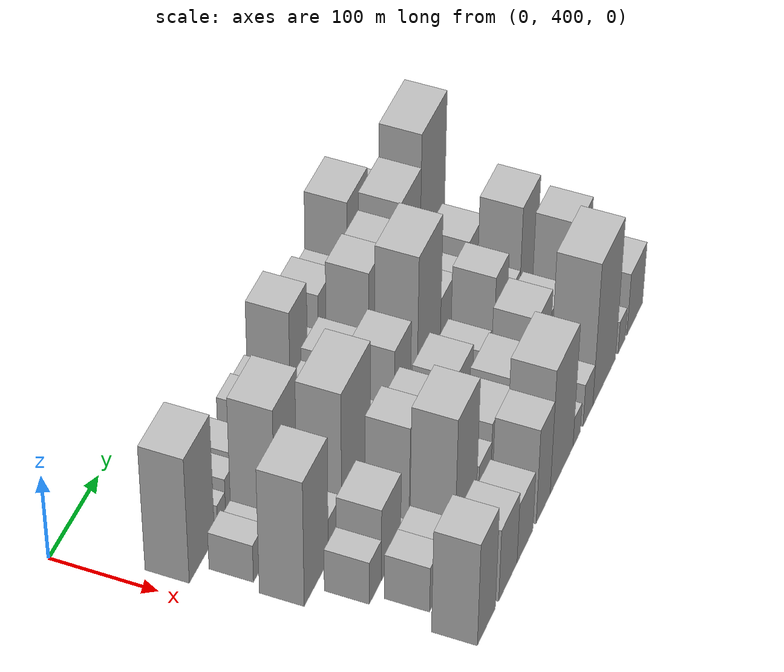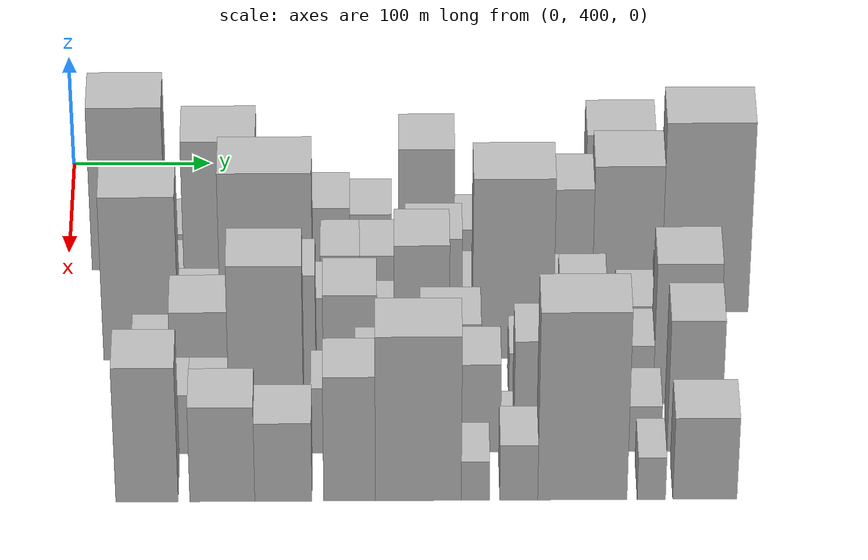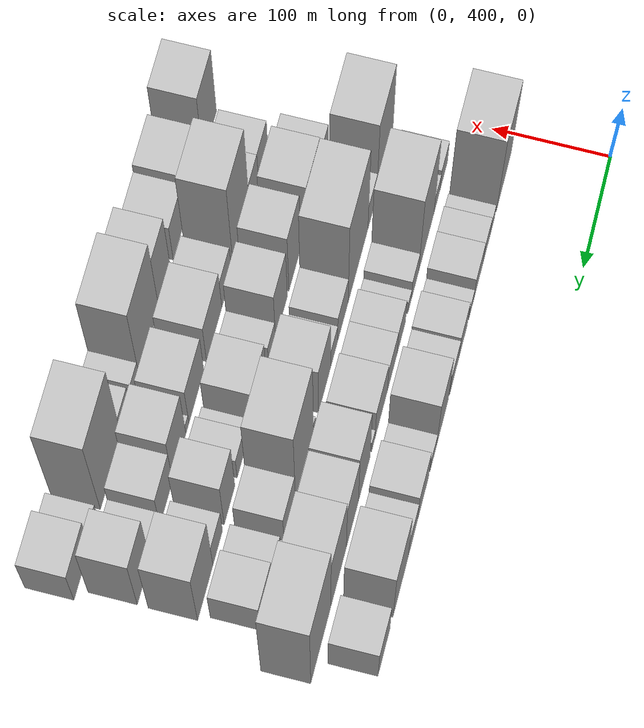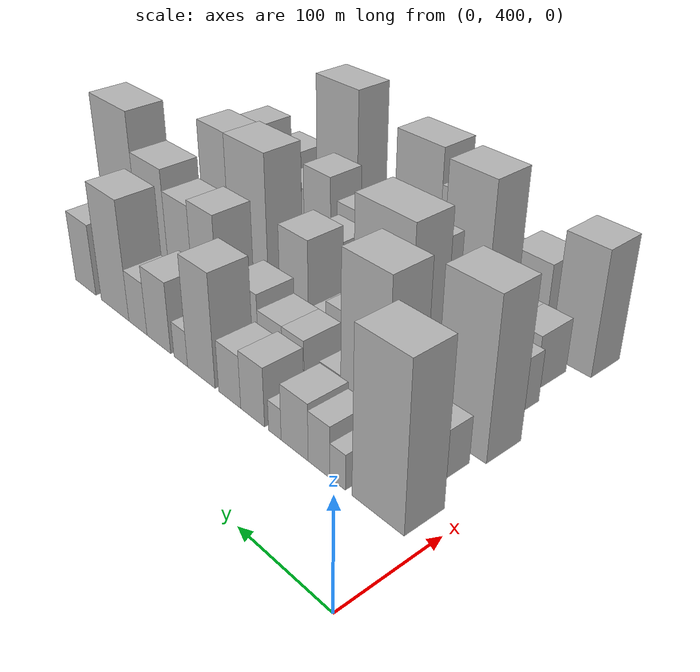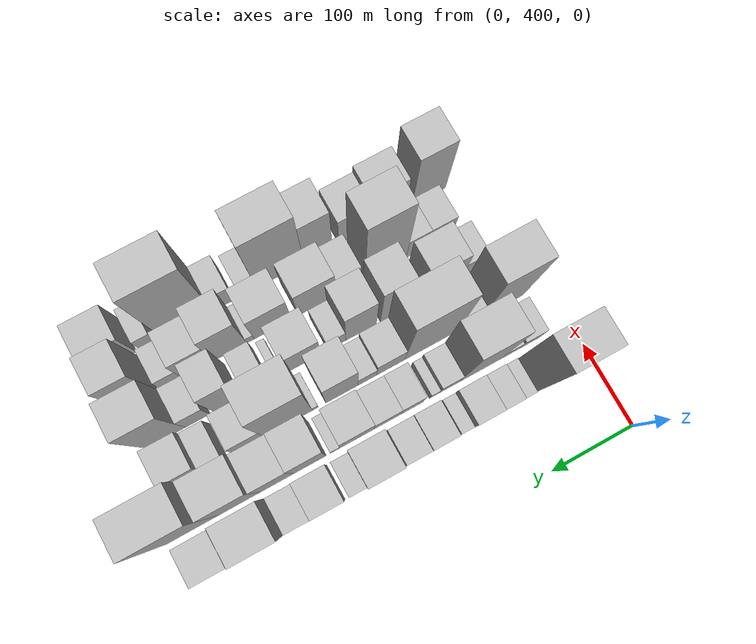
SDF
<sdf version="1.6">
 <world name="default">
  <model name="building_33">
   <static>1</static>
   <pose>100.0000 444.0145 0 0.000000 0.000000 0.000000</pose>
   <link name="link">
    <pose>0 0 75.00 0 0 0</pose>
    <collision name="collision"><geometry><box><size>40.0000 53.2121 150.0000</size></box></geometry></collision>
    <visual name="visual">
     <cast_shadows>0</cast_shadows>
     <geometry><box><size>40.0000 53.2121 150.0000</size></box></geometry>
     <material>
      <script>
       <uri>model://HANNAS_wall/materials/scripts</uri>
       <uri>model://HANNAS_wall/materials/textures</uri>
       <name>vrc/HANNAS_wall</name>
      </script>
     </material>
    </visual>
   </link>
  </model>
  <model name="building_34">
   <static>1</static>
   <pose>100.0000 486.1541 0 0.000000 0.000000 0.000000</pose>
   <link name="link">
    <pose>0 0 16.50 0 0 0</pose>
    <collision name="collision"><geometry><box><size>40.0000 17.0671 33.0000</size></box></geometry></collision>
    <visual name="visual">
     <cast_shadows>0</cast_shadows>
     <geometry><box><size>40.0000 17.0671 33.0000</size></box></geometry>
     <material>
      <script>
       <uri>model://HANNAS_wall/materials/scripts</uri>
       <uri>model://HANNAS_wall/materials/textures</uri>
       <name>vrc/HANNAS_wall</name>
      </script>
     </material>
    </visual>
   </link>
  </model>
  <model name="building_35">
   <static>1</static>
   <pose>100.0000 506.9671 0 0.000000 0.000000 0.000000</pose>
   <link name="link">
    <pose>0 0 24.00 0 0 0</pose>
    <collision name="collision"><geometry><box><size>40.0000 24.5587 48.0000</size></box></geometry></collision>
    <visual name="visual">
     <cast_shadows>0</cast_shadows>
     <geometry><box><size>40.0000 24.5587 48.0000</size></box></geometry>
     <material>
      <script>
       <uri>model://HANNAS_wall/materials/scripts</uri>
       <uri>model://HANNAS_wall/materials/textures</uri>
       <name>vrc/HANNAS_wall</name>
      </script>
     </material>
    </visual>
   </link>
  </model>
  <model name="building_36">
   <static>1</static>
   <pose>100.0000 535.3519 0 0.000000 0.000000 0.000000</pose>
   <link name="link">
    <pose>0 0 27.00 0 0 0</pose>
    <collision name="collision"><geometry><box><size>40.0000 32.2110 54.0000</size></box></geometry></collision>
    <visual name="visual">
     <cast_shadows>0</cast_shadows>
     <geometry><box><size>40.0000 32.2110 54.0000</size></box></geometry>
     <material>
      <script>
       <uri>model://HANNAS_wall/materials/scripts</uri>
       <uri>model://HANNAS_wall/materials/textures</uri>
       <name>vrc/HANNAS_wall</name>
      </script>
     </material>
    </visual>
   </link>
  </model>
  <model name="building_37">
   <static>1</static>
   <pose>100.0000 559.2632 0 0.000000 0.000000 0.000000</pose>
   <link name="link">
    <pose>0 0 15.00 0 0 0</pose>
    <collision name="collision"><geometry><box><size>40.0000 15.6117 30.0000</size></box></geometry></collision>
    <visual name="visual">
     <cast_shadows>0</cast_shadows>
     <geometry><box><size>40.0000 15.6117 30.0000</size></box></geometry>
     <material>
      <script>
       <uri>model://HANNAS_wall/materials/scripts</uri>
       <uri>model://HANNAS_wall/materials/textures</uri>
       <name>vrc/HANNAS_wall</name>
      </script>
     </material>
    </visual>
   </link>
  </model>
  <model name="building_38">
   <static>1</static>
   <pose>100.0000 587.5216 0 0.000000 0.000000 0.000000</pose>
   <link name="link">
    <pose>0 0 28.50 0 0 0</pose>
    <collision name="collision"><geometry><box><size>40.0000 30.9050 57.0000</size></box></geometry></collision>
    <visual name="visual">
     <cast_shadows>0</cast_shadows>
     <geometry><box><size>40.0000 30.9050 57.0000</size></box></geometry>
     <material>
      <script>
       <uri>model://HANNAS_wall/materials/scripts</uri>
       <uri>model://HANNAS_wall/materials/textures</uri>
       <name>vrc/HANNAS_wall</name>
      </script>
     </material>
    </visual>
   </link>
  </model>
  <model name="building_39">
   <static>1</static>
   <pose>100.0000 618.0033 0 0.000000 0.000000 0.000000</pose>
   <link name="link">
    <pose>0 0 25.50 0 0 0</pose>
    <collision name="collision"><geometry><box><size>40.0000 30.0585 51.0000</size></box></geometry></collision>
    <visual name="visual">
     <cast_shadows>0</cast_shadows>
     <geometry><box><size>40.0000 30.0585 51.0000</size></box></geometry>
     <material>
      <script>
       <uri>model://HANNAS_wall/materials/scripts</uri>
       <uri>model://HANNAS_wall/materials/textures</uri>
       <name>vrc/HANNAS_wall</name>
      </script>
     </material>
    </visual>
   </link>
  </model>
  <model name="building_40">
   <static>1</static>
   <pose>100.0000 657.9605 0 0.000000 0.000000 0.000000</pose>
   <link name="link">
    <pose>0 0 55.50 0 0 0</pose>
    <collision name="collision"><geometry><box><size>40.0000 39.8559 111.0000</size></box></geometry></collision>
    <visual name="visual">
     <cast_shadows>0</cast_shadows>
     <geometry><box><size>40.0000 39.8559 111.0000</size></box></geometry>
     <material>
      <script>
       <uri>model://HANNAS_wall/materials/scripts</uri>
       <uri>model://HANNAS_wall/materials/textures</uri>
       <name>vrc/HANNAS_wall</name>
      </script>
     </material>
    </visual>
   </link>
  </model>
  <model name="building_41">
   <static>1</static>
   <pose>100.0000 688.1823 0 0.000000 0.000000 0.000000</pose>
   <link name="link">
    <pose>0 0 18.00 0 0 0</pose>
    <collision name="collision"><geometry><box><size>40.0000 20.5877 36.0000</size></box></geometry></collision>
    <visual name="visual">
     <cast_shadows>0</cast_shadows>
     <geometry><box><size>40.0000 20.5877 36.0000</size></box></geometry>
     <material>
      <script>
       <uri>model://HANNAS_wall/materials/scripts</uri>
       <uri>model://HANNAS_wall/materials/textures</uri>
       <name>vrc/HANNAS_wall</name>
      </script>
     </material>
    </visual>
   </link>
  </model>
  <model name="building_42">
   <static>1</static>
   <pose>100.0000 722.3112 0 0.000000 0.000000 0.000000</pose>
   <link name="link">
    <pose>0 0 36.00 0 0 0</pose>
    <collision name="collision"><geometry><box><size>40.0000 37.6702 72.0000</size></box></geometry></collision>
    <visual name="visual">
     <cast_shadows>0</cast_shadows>
     <geometry><box><size>40.0000 37.6702 72.0000</size></box></geometry>
     <material>
      <script>
       <uri>model://HANNAS_wall/materials/scripts</uri>
       <uri>model://HANNAS_wall/materials/textures</uri>
       <name>vrc/HANNAS_wall</name>
      </script>
     </material>
    </visual>
   </link>
  </model>
  <model name="building_43">
   <static>1</static>
   <pose>100.0000 756.2850 0 0.000000 0.000000 0.000000</pose>
   <link name="link">
    <pose>0 0 27.00 0 0 0</pose>
    <collision name="collision"><geometry><box><size>40.0000 30.2773 54.0000</size></box></geometry></collision>
    <visual name="visual">
     <cast_shadows>0</cast_shadows>
     <geometry><box><size>40.0000 30.2773 54.0000</size></box></geometry>
     <material>
      <script>
       <uri>model://HANNAS_wall/materials/scripts</uri>
       <uri>model://HANNAS_wall/materials/textures</uri>
       <name>vrc/HANNAS_wall</name>
      </script>
     </material>
    </visual>
   </link>
  </model>
  <model name="building_44">
   <static>1</static>
   <pose>100.0000 795.8376 0 0.000000 0.000000 0.000000</pose>
   <link name="link">
    <pose>0 0 61.50 0 0 0</pose>
    <collision name="collision"><geometry><box><size>40.0000 48.8279 123.0000</size></box></geometry></collision>
    <visual name="visual">
     <cast_shadows>0</cast_shadows>
     <geometry><box><size>40.0000 48.8279 123.0000</size></box></geometry>
     <material>
      <script>
       <uri>model://HANNAS_wall/materials/scripts</uri>
       <uri>model://HANNAS_wall/materials/textures</uri>
       <name>vrc/HANNAS_wall</name>
      </script>
     </material>
    </visual>
   </link>
  </model>
  <model name="building_45">
   <static>1</static>
   <pose>100.0000 849.3882 0 0.000000 0.000000 0.000000</pose>
   <link name="link">
    <pose>0 0 37.50 0 0 0</pose>
    <collision name="collision"><geometry><box><size>40.0000 38.2733 75.0000</size></box></geometry></collision>
    <visual name="visual">
     <cast_shadows>0</cast_shadows>
     <geometry><box><size>40.0000 38.2733 75.0000</size></box></geometry>
     <material>
      <script>
       <uri>model://HANNAS_wall/materials/scripts</uri>
       <uri>model://HANNAS_wall/materials/textures</uri>
       <name>vrc/HANNAS_wall</name>
      </script>
     </material>
    </visual>
   </link>
  </model>
  <model name="building_83">
   <static>1</static>
   <pose>149.0000 451.2249 0 0.000000 0.000000 0.000000</pose>
   <link name="link">
    <pose>0 0 22.50 0 0 0</pose>
    <collision name="collision"><geometry><box><size>40.0000 26.6337 45.0000</size></box></geometry></collision>
    <visual name="visual">
     <cast_shadows>0</cast_shadows>
     <geometry><box><size>40.0000 26.6337 45.0000</size></box></geometry>
     <material>
      <script>
       <uri>model://HANNAS_wall/materials/scripts</uri>
       <uri>model://HANNAS_wall/materials/textures</uri>
       <name>vrc/HANNAS_wall</name>
      </script>
     </material>
    </visual>
   </link>
  </model>
  <model name="building_84">
   <static>1</static>
   <pose>149.0000 474.9563 0 0.000000 0.000000 0.000000</pose>
   <link name="link">
    <pose>0 0 18.00 0 0 0</pose>
    <collision name="collision"><geometry><box><size>40.0000 20.8291 36.0000</size></box></geometry></collision>
    <visual name="visual">
     <cast_shadows>0</cast_shadows>
     <geometry><box><size>40.0000 20.8291 36.0000</size></box></geometry>
     <material>
      <script>
       <uri>model://HANNAS_wall/materials/scripts</uri>
       <uri>model://HANNAS_wall/materials/textures</uri>
       <name>vrc/HANNAS_wall</name>
      </script>
     </material>
    </visual>
   </link>
  </model>
  <model name="building_85">
   <static>1</static>
   <pose>149.0000 511.5533 0 0.000000 0.000000 0.000000</pose>
   <link name="link">
    <pose>0 0 79.50 0 0 0</pose>
    <collision name="collision"><geometry><box><size>40.0000 52.3647 159.0000</size></box></geometry></collision>
    <visual name="visual">
     <cast_shadows>0</cast_shadows>
     <geometry><box><size>40.0000 52.3647 159.0000</size></box></geometry>
     <material>
      <script>
       <uri>model://HANNAS_wall/materials/scripts</uri>
       <uri>model://HANNAS_wall/materials/textures</uri>
       <name>vrc/HANNAS_wall</name>
      </script>
     </material>
    </visual>
   </link>
  </model>
  <model name="building_86">
   <static>1</static>
   <pose>149.0000 550.3458 0 0.000000 0.000000 0.000000</pose>
   <link name="link">
    <pose>0 0 22.50 0 0 0</pose>
    <collision name="collision"><geometry><box><size>40.0000 25.2205 45.0000</size></box></geometry></collision>
    <visual name="visual">
     <cast_shadows>0</cast_shadows>
     <geometry><box><size>40.0000 25.2205 45.0000</size></box></geometry>
     <material>
      <script>
       <uri>model://HANNAS_wall/materials/scripts</uri>
       <uri>model://HANNAS_wall/materials/textures</uri>
       <name>vrc/HANNAS_wall</name>
      </script>
     </material>
    </visual>
   </link>
  </model>
  <model name="building_87">
   <static>1</static>
   <pose>149.0000 568.5359 0 0.000000 0.000000 0.000000</pose>
   <link name="link">
    <pose>0 0 13.50 0 0 0</pose>
    <collision name="collision"><geometry><box><size>40.0000 11.1596 27.0000</size></box></geometry></collision>
    <visual name="visual">
     <cast_shadows>0</cast_shadows>
     <geometry><box><size>40.0000 11.1596 27.0000</size></box></geometry>
     <material>
      <script>
       <uri>model://HANNAS_wall/materials/scripts</uri>
       <uri>model://HANNAS_wall/materials/textures</uri>
       <name>vrc/HANNAS_wall</name>
      </script>
     </material>
    </visual>
   </link>
  </model>
  <model name="building_88">
   <static>1</static>
   <pose>149.0000 595.9798 0 0.000000 0.000000 0.000000</pose>
   <link name="link">
    <pose>0 0 27.00 0 0 0</pose>
    <collision name="collision"><geometry><box><size>40.0000 27.7284 54.0000</size></box></geometry></collision>
    <visual name="visual">
     <cast_shadows>0</cast_shadows>
     <geometry><box><size>40.0000 27.7284 54.0000</size></box></geometry>
     <material>
      <script>
       <uri>model://HANNAS_wall/materials/scripts</uri>
       <uri>model://HANNAS_wall/materials/textures</uri>
       <name>vrc/HANNAS_wall</name>
      </script>
     </material>
    </visual>
   </link>
  </model>
  <model name="building_89">
   <static>1</static>
   <pose>149.0000 626.0319 0 0.000000 0.000000 0.000000</pose>
   <link name="link">
    <pose>0 0 27.00 0 0 0</pose>
    <collision name="collision"><geometry><box><size>40.0000 32.3757 54.0000</size></box></geometry></collision>
    <visual name="visual">
     <cast_shadows>0</cast_shadows>
     <geometry><box><size>40.0000 32.3757 54.0000</size></box></geometry>
     <material>
      <script>
       <uri>model://HANNAS_wall/materials/scripts</uri>
       <uri>model://HANNAS_wall/materials/textures</uri>
       <name>vrc/HANNAS_wall</name>
      </script>
     </material>
    </visual>
   </link>
  </model>
  <model name="building_90">
   <static>1</static>
   <pose>149.0000 662.5540 0 0.000000 0.000000 0.000000</pose>
   <link name="link">
    <pose>0 0 34.50 0 0 0</pose>
    <collision name="collision"><geometry><box><size>40.0000 40.6685 69.0000</size></box></geometry></collision>
    <visual name="visual">
     <cast_shadows>0</cast_shadows>
     <geometry><box><size>40.0000 40.6685 69.0000</size></box></geometry>
     <material>
      <script>
       <uri>model://HANNAS_wall/materials/scripts</uri>
       <uri>model://HANNAS_wall/materials/textures</uri>
       <name>vrc/HANNAS_wall</name>
      </script>
     </material>
    </visual>
   </link>
  </model>
  <model name="building_91">
   <static>1</static>
   <pose>149.0000 688.4616 0 0.000000 0.000000 0.000000</pose>
   <link name="link">
    <pose>0 0 12.00 0 0 0</pose>
    <collision name="collision"><geometry><box><size>40.0000 11.1467 24.0000</size></box></geometry></collision>
    <visual name="visual">
     <cast_shadows>0</cast_shadows>
     <geometry><box><size>40.0000 11.1467 24.0000</size></box></geometry>
     <material>
      <script>
       <uri>model://HANNAS_wall/materials/scripts</uri>
       <uri>model://HANNAS_wall/materials/textures</uri>
       <name>vrc/HANNAS_wall</name>
      </script>
     </material>
    </visual>
   </link>
  </model>
  <model name="building_92">
   <static>1</static>
   <pose>149.0000 717.9925 0 0.000000 0.000000 0.000000</pose>
   <link name="link">
    <pose>0 0 60.00 0 0 0</pose>
    <collision name="collision"><geometry><box><size>40.0000 37.9150 120.0000</size></box></geometry></collision>
    <visual name="visual">
     <cast_shadows>0</cast_shadows>
     <geometry><box><size>40.0000 37.9150 120.0000</size></box></geometry>
     <material>
      <script>
       <uri>model://HANNAS_wall/materials/scripts</uri>
       <uri>model://HANNAS_wall/materials/textures</uri>
       <name>vrc/HANNAS_wall</name>
      </script>
     </material>
    </visual>
   </link>
  </model>
  <model name="building_93">
   <static>1</static>
   <pose>149.0000 756.2262 0 0.000000 0.000000 0.000000</pose>
   <link name="link">
    <pose>0 0 57.00 0 0 0</pose>
    <collision name="collision"><geometry><box><size>40.0000 38.5523 114.0000</size></box></geometry></collision>
    <visual name="visual">
     <cast_shadows>0</cast_shadows>
     <geometry><box><size>40.0000 38.5523 114.0000</size></box></geometry>
     <material>
      <script>
       <uri>model://HANNAS_wall/materials/scripts</uri>
       <uri>model://HANNAS_wall/materials/textures</uri>
       <name>vrc/HANNAS_wall</name>
      </script>
     </material>
    </visual>
   </link>
  </model>
  <model name="building_94">
   <static>1</static>
   <pose>149.0000 800.0912 0 0.000000 0.000000 0.000000</pose>
   <link name="link">
    <pose>0 0 67.50 0 0 0</pose>
    <collision name="collision"><geometry><box><size>40.0000 49.1777 135.0000</size></box></geometry></collision>
    <visual name="visual">
     <cast_shadows>0</cast_shadows>
     <geometry><box><size>40.0000 49.1777 135.0000</size></box></geometry>
     <material>
      <script>
       <uri>model://HANNAS_wall/materials/scripts</uri>
       <uri>model://HANNAS_wall/materials/textures</uri>
       <name>vrc/HANNAS_wall</name>
      </script>
     </material>
    </visual>
   </link>
  </model>
  <model name="building_95">
   <static>1</static>
   <pose>149.0000 855.8932 0 0.000000 0.000000 0.000000</pose>
   <link name="link">
    <pose>0 0 87.00 0 0 0</pose>
    <collision name="collision"><geometry><box><size>40.0000 62.4264 174.0000</size></box></geometry></collision>
    <visual name="visual">
     <cast_shadows>0</cast_shadows>
     <geometry><box><size>40.0000 62.4264 174.0000</size></box></geometry>
     <material>
      <script>
       <uri>model://HANNAS_wall/materials/scripts</uri>
       <uri>model://HANNAS_wall/materials/textures</uri>
       <name>vrc/HANNAS_wall</name>
      </script>
     </material>
    </visual>
   </link>
  </model>
  <model name="building_131">
   <static>1</static>
   <pose>198.0000 455.5436 0 0.000000 0.000000 0.000000</pose>
   <link name="link">
    <pose>0 0 75.00 0 0 0</pose>
    <collision name="collision"><geometry><box><size>40.0000 53.1893 150.0000</size></box></geometry></collision>
    <visual name="visual">
     <cast_shadows>0</cast_shadows>
     <geometry><box><size>40.0000 53.1893 150.0000</size></box></geometry>
     <material>
      <script>
       <uri>model://HANNAS_wall/materials/scripts</uri>
       <uri>model://HANNAS_wall/materials/textures</uri>
       <name>vrc/HANNAS_wall</name>
      </script>
     </material>
    </visual>
   </link>
  </model>
  <model name="building_132">
   <static>1</static>
   <pose>198.0000 497.0287 0 0.000000 0.000000 0.000000</pose>
   <link name="link">
    <pose>0 0 25.50 0 0 0</pose>
    <collision name="collision"><geometry><box><size>40.0000 29.7809 51.0000</size></box></geometry></collision>
    <visual name="visual">
     <cast_shadows>0</cast_shadows>
     <geometry><box><size>40.0000 29.7809 51.0000</size></box></geometry>
     <material>
      <script>
       <uri>model://HANNAS_wall/materials/scripts</uri>
       <uri>model://HANNAS_wall/materials/textures</uri>
       <name>vrc/HANNAS_wall</name>
      </script>
     </material>
    </visual>
   </link>
  </model>
  <model name="building_133">
   <static>1</static>
   <pose>198.0000 544.5320 0 0.000000 0.000000 0.000000</pose>
   <link name="link">
    <pose>0 0 85.50 0 0 0</pose>
    <collision name="collision"><geometry><box><size>40.0000 65.2258 171.0000</size></box></geometry></collision>
    <visual name="visual">
     <cast_shadows>0</cast_shadows>
     <geometry><box><size>40.0000 65.2258 171.0000</size></box></geometry>
     <material>
      <script>
       <uri>model://HANNAS_wall/materials/scripts</uri>
       <uri>model://HANNAS_wall/materials/textures</uri>
       <name>vrc/HANNAS_wall</name>
      </script>
     </material>
    </visual>
   </link>
  </model>
  <model name="building_134">
   <static>1</static>
   <pose>198.0000 594.2405 0 0.000000 0.000000 0.000000</pose>
   <link name="link">
    <pose>0 0 28.50 0 0 0</pose>
    <collision name="collision"><geometry><box><size>40.0000 34.1912 57.0000</size></box></geometry></collision>
    <visual name="visual">
     <cast_shadows>0</cast_shadows>
     <geometry><box><size>40.0000 34.1912 57.0000</size></box></geometry>
     <material>
      <script>
       <uri>model://HANNAS_wall/materials/scripts</uri>
       <uri>model://HANNAS_wall/materials/textures</uri>
       <name>vrc/HANNAS_wall</name>
      </script>
     </material>
    </visual>
   </link>
  </model>
  <model name="building_135">
   <static>1</static>
   <pose>198.0000 622.7536 0 0.000000 0.000000 0.000000</pose>
   <link name="link">
    <pose>0 0 19.50 0 0 0</pose>
    <collision name="collision"><geometry><box><size>40.0000 22.8350 39.0000</size></box></geometry></collision>
    <visual name="visual">
     <cast_shadows>0</cast_shadows>
     <geometry><box><size>40.0000 22.8350 39.0000</size></box></geometry>
     <material>
      <script>
       <uri>model://HANNAS_wall/materials/scripts</uri>
       <uri>model://HANNAS_wall/materials/textures</uri>
       <name>vrc/HANNAS_wall</name>
      </script>
     </material>
    </visual>
   </link>
  </model>
  <model name="building_136">
   <static>1</static>
   <pose>198.0000 653.6606 0 0.000000 0.000000 0.000000</pose>
   <link name="link">
    <pose>0 0 52.50 0 0 0</pose>
    <collision name="collision"><geometry><box><size>40.0000 38.9790 105.0000</size></box></geometry></collision>
    <visual name="visual">
     <cast_shadows>0</cast_shadows>
     <geometry><box><size>40.0000 38.9790 105.0000</size></box></geometry>
     <material>
      <script>
       <uri>model://HANNAS_wall/materials/scripts</uri>
       <uri>model://HANNAS_wall/materials/textures</uri>
       <name>vrc/HANNAS_wall</name>
      </script>
     </material>
    </visual>
   </link>
  </model>
  <model name="building_137">
   <static>1</static>
   <pose>198.0000 685.7514 0 0.000000 0.000000 0.000000</pose>
   <link name="link">
    <pose>0 0 9.00 0 0 0</pose>
    <collision name="collision"><geometry><box><size>40.0000 7.2027 18.0000</size></box></geometry></collision>
    <visual name="visual">
     <cast_shadows>0</cast_shadows>
     <geometry><box><size>40.0000 7.2027 18.0000</size></box></geometry>
     <material>
      <script>
       <uri>model://HANNAS_wall/materials/scripts</uri>
       <uri>model://HANNAS_wall/materials/textures</uri>
       <name>vrc/HANNAS_wall</name>
      </script>
     </material>
    </visual>
   </link>
  </model>
  <model name="building_138">
   <static>1</static>
   <pose>198.0000 717.8626 0 0.000000 0.000000 0.000000</pose>
   <link name="link">
    <pose>0 0 82.50 0 0 0</pose>
    <collision name="collision"><geometry><box><size>40.0000 57.0197 165.0000</size></box></geometry></collision>
    <visual name="visual">
     <cast_shadows>0</cast_shadows>
     <geometry><box><size>40.0000 57.0197 165.0000</size></box></geometry>
     <material>
      <script>
       <uri>model://HANNAS_wall/materials/scripts</uri>
       <uri>model://HANNAS_wall/materials/textures</uri>
       <name>vrc/HANNAS_wall</name>
      </script>
     </material>
    </visual>
   </link>
  </model>
  <model name="building_139">
   <static>1</static>
   <pose>198.0000 764.2651 0 0.000000 0.000000 0.000000</pose>
   <link name="link">
    <pose>0 0 31.50 0 0 0</pose>
    <collision name="collision"><geometry><box><size>40.0000 35.7853 63.0000</size></box></geometry></collision>
    <visual name="visual">
     <cast_shadows>0</cast_shadows>
     <geometry><box><size>40.0000 35.7853 63.0000</size></box></geometry>
     <material>
      <script>
       <uri>model://HANNAS_wall/materials/scripts</uri>
       <uri>model://HANNAS_wall/materials/textures</uri>
       <name>vrc/HANNAS_wall</name>
      </script>
     </material>
    </visual>
   </link>
  </model>
  <model name="building_140">
   <static>1</static>
   <pose>198.0000 804.3659 0 0.000000 0.000000 0.000000</pose>
   <link name="link">
    <pose>0 0 24.00 0 0 0</pose>
    <collision name="collision"><geometry><box><size>40.0000 26.4164 48.0000</size></box></geometry></collision>
    <visual name="visual">
     <cast_shadows>0</cast_shadows>
     <geometry><box><size>40.0000 26.4164 48.0000</size></box></geometry>
     <material>
      <script>
       <uri>model://HANNAS_wall/materials/scripts</uri>
       <uri>model://HANNAS_wall/materials/textures</uri>
       <name>vrc/HANNAS_wall</name>
      </script>
     </material>
    </visual>
   </link>
  </model>
  <model name="building_141">
   <static>1</static>
   <pose>198.0000 836.8367 0 0.000000 0.000000 0.000000</pose>
   <link name="link">
    <pose>0 0 34.50 0 0 0</pose>
    <collision name="collision"><geometry><box><size>40.0000 38.5252 69.0000</size></box></geometry></collision>
    <visual name="visual">
     <cast_shadows>0</cast_shadows>
     <geometry><box><size>40.0000 38.5252 69.0000</size></box></geometry>
     <material>
      <script>
       <uri>model://HANNAS_wall/materials/scripts</uri>
       <uri>model://HANNAS_wall/materials/textures</uri>
       <name>vrc/HANNAS_wall</name>
      </script>
     </material>
    </visual>
   </link>
  </model>
  <model name="building_177">
   <static>1</static>
   <pose>247.0000 464.2533 0 0.000000 0.000000 0.000000</pose>
   <link name="link">
    <pose>0 0 25.50 0 0 0</pose>
    <collision name="collision"><geometry><box><size>40.0000 26.8072 51.0000</size></box></geometry></collision>
    <visual name="visual">
     <cast_shadows>0</cast_shadows>
     <geometry><box><size>40.0000 26.8072 51.0000</size></box></geometry>
     <material>
      <script>
       <uri>model://HANNAS_wall/materials/scripts</uri>
       <uri>model://HANNAS_wall/materials/textures</uri>
       <name>vrc/HANNAS_wall</name>
      </script>
     </material>
    </visual>
   </link>
  </model>
  <model name="building_178">
   <static>1</static>
   <pose>247.0000 499.9358 0 0.000000 0.000000 0.000000</pose>
   <link name="link">
    <pose>0 0 43.50 0 0 0</pose>
    <collision name="collision"><geometry><box><size>40.0000 44.5578 87.0000</size></box></geometry></collision>
    <visual name="visual">
     <cast_shadows>0</cast_shadows>
     <geometry><box><size>40.0000 44.5578 87.0000</size></box></geometry>
     <material>
      <script>
       <uri>model://HANNAS_wall/materials/scripts</uri>
       <uri>model://HANNAS_wall/materials/textures</uri>
       <name>vrc/HANNAS_wall</name>
      </script>
     </material>
    </visual>
   </link>
  </model>
  <model name="building_179">
   <static>1</static>
   <pose>247.0000 527.1977 0 0.000000 0.000000 0.000000</pose>
   <link name="link">
    <pose>0 0 10.50 0 0 0</pose>
    <collision name="collision"><geometry><box><size>40.0000 9.9661 21.0000</size></box></geometry></collision>
    <visual name="visual">
     <cast_shadows>0</cast_shadows>
     <geometry><box><size>40.0000 9.9661 21.0000</size></box></geometry>
     <material>
      <script>
       <uri>model://HANNAS_wall/materials/scripts</uri>
       <uri>model://HANNAS_wall/materials/textures</uri>
       <name>vrc/HANNAS_wall</name>
      </script>
     </material>
    </visual>
   </link>
  </model>
  <model name="building_180">
   <static>1</static>
   <pose>247.0000 560.8029 0 0.000000 0.000000 0.000000</pose>
   <link name="link">
    <pose>0 0 60.00 0 0 0</pose>
    <collision name="collision"><geometry><box><size>40.0000 37.2442 120.0000</size></box></geometry></collision>
    <visual name="visual">
     <cast_shadows>0</cast_shadows>
     <geometry><box><size>40.0000 37.2442 120.0000</size></box></geometry>
     <material>
      <script>
       <uri>model://HANNAS_wall/materials/scripts</uri>
       <uri>model://HANNAS_wall/materials/textures</uri>
       <name>vrc/HANNAS_wall</name>
      </script>
     </material>
    </visual>
   </link>
  </model>
  <model name="building_181">
   <static>1</static>
   <pose>247.0000 603.2014 0 0.000000 0.000000 0.000000</pose>
   <link name="link">
    <pose>0 0 51.00 0 0 0</pose>
    <collision name="collision"><geometry><box><size>40.0000 37.5528 102.0000</size></box></geometry></collision>
    <visual name="visual">
     <cast_shadows>0</cast_shadows>
     <geometry><box><size>40.0000 37.5528 102.0000</size></box></geometry>
     <material>
      <script>
       <uri>model://HANNAS_wall/materials/scripts</uri>
       <uri>model://HANNAS_wall/materials/textures</uri>
       <name>vrc/HANNAS_wall</name>
      </script>
     </material>
    </visual>
   </link>
  </model>
  <model name="building_182">
   <static>1</static>
   <pose>247.0000 633.0966 0 0.000000 0.000000 0.000000</pose>
   <link name="link">
    <pose>0 0 21.00 0 0 0</pose>
    <collision name="collision"><geometry><box><size>40.0000 22.2375 42.0000</size></box></geometry></collision>
    <visual name="visual">
     <cast_shadows>0</cast_shadows>
     <geometry><box><size>40.0000 22.2375 42.0000</size></box></geometry>
     <material>
      <script>
       <uri>model://HANNAS_wall/materials/scripts</uri>
       <uri>model://HANNAS_wall/materials/textures</uri>
       <name>vrc/HANNAS_wall</name>
      </script>
     </material>
    </visual>
   </link>
  </model>
  <model name="building_183">
   <static>1</static>
   <pose>247.0000 673.3629 0 0.000000 0.000000 0.000000</pose>
   <link name="link">
    <pose>0 0 37.50 0 0 0</pose>
    <collision name="collision"><geometry><box><size>40.0000 42.2951 75.0000</size></box></geometry></collision>
    <visual name="visual">
     <cast_shadows>0</cast_shadows>
     <geometry><box><size>40.0000 42.2951 75.0000</size></box></geometry>
     <material>
      <script>
       <uri>model://HANNAS_wall/materials/scripts</uri>
       <uri>model://HANNAS_wall/materials/textures</uri>
       <name>vrc/HANNAS_wall</name>
      </script>
     </material>
    </visual>
   </link>
  </model>
  <model name="building_184">
   <static>1</static>
   <pose>247.0000 703.3257 0 0.000000 0.000000 0.000000</pose>
   <link name="link">
    <pose>0 0 12.00 0 0 0</pose>
    <collision name="collision"><geometry><box><size>40.0000 9.6305 24.0000</size></box></geometry></collision>
    <visual name="visual">
     <cast_shadows>0</cast_shadows>
     <geometry><box><size>40.0000 9.6305 24.0000</size></box></geometry>
     <material>
      <script>
       <uri>model://HANNAS_wall/materials/scripts</uri>
       <uri>model://HANNAS_wall/materials/textures</uri>
       <name>vrc/HANNAS_wall</name>
      </script>
     </material>
    </visual>
   </link>
  </model>
  <model name="building_185">
   <static>1</static>
   <pose>247.0000 727.8617 0 0.000000 0.000000 0.000000</pose>
   <link name="link">
    <pose>0 0 24.00 0 0 0</pose>
    <collision name="collision"><geometry><box><size>40.0000 27.4417 48.0000</size></box></geometry></collision>
    <visual name="visual">
     <cast_shadows>0</cast_shadows>
     <geometry><box><size>40.0000 27.4417 48.0000</size></box></geometry>
     <material>
      <script>
       <uri>model://HANNAS_wall/materials/scripts</uri>
       <uri>model://HANNAS_wall/materials/textures</uri>
       <name>vrc/HANNAS_wall</name>
      </script>
     </material>
    </visual>
   </link>
  </model>
  <model name="building_186">
   <static>1</static>
   <pose>247.0000 764.8853 0 0.000000 0.000000 0.000000</pose>
   <link name="link">
    <pose>0 0 52.50 0 0 0</pose>
    <collision name="collision"><geometry><box><size>40.0000 32.6053 105.0000</size></box></geometry></collision>
    <visual name="visual">
     <cast_shadows>0</cast_shadows>
     <geometry><box><size>40.0000 32.6053 105.0000</size></box></geometry>
     <material>
      <script>
       <uri>model://HANNAS_wall/materials/scripts</uri>
       <uri>model://HANNAS_wall/materials/textures</uri>
       <name>vrc/HANNAS_wall</name>
      </script>
     </material>
    </visual>
   </link>
  </model>
  <model name="building_187">
   <static>1</static>
   <pose>247.0000 800.7090 0 0.000000 0.000000 0.000000</pose>
   <link name="link">
    <pose>0 0 27.00 0 0 0</pose>
    <collision name="collision"><geometry><box><size>40.0000 29.0421 54.0000</size></box></geometry></collision>
    <visual name="visual">
     <cast_shadows>0</cast_shadows>
     <geometry><box><size>40.0000 29.0421 54.0000</size></box></geometry>
     <material>
      <script>
       <uri>model://HANNAS_wall/materials/scripts</uri>
       <uri>model://HANNAS_wall/materials/textures</uri>
       <name>vrc/HANNAS_wall</name>
      </script>
     </material>
    </visual>
   </link>
  </model>
  <model name="building_188">
   <static>1</static>
   <pose>247.0000 838.0198 0 0.000000 0.000000 0.000000</pose>
   <link name="link">
    <pose>0 0 64.50 0 0 0</pose>
    <collision name="collision"><geometry><box><size>40.0000 45.5796 129.0000</size></box></geometry></collision>
    <visual name="visual">
     <cast_shadows>0</cast_shadows>
     <geometry><box><size>40.0000 45.5796 129.0000</size></box></geometry>
     <material>
      <script>
       <uri>model://HANNAS_wall/materials/scripts</uri>
       <uri>model://HANNAS_wall/materials/textures</uri>
       <name>vrc/HANNAS_wall</name>
      </script>
     </material>
    </visual>
   </link>
  </model>
  <model name="building_224">
   <static>1</static>
   <pose>296.0000 476.4395 0 0.000000 0.000000 0.000000</pose>
   <link name="link">
    <pose>0 0 27.00 0 0 0</pose>
    <collision name="collision"><geometry><box><size>40.0000 30.4362 54.0000</size></box></geometry></collision>
    <visual name="visual">
     <cast_shadows>0</cast_shadows>
     <geometry><box><size>40.0000 30.4362 54.0000</size></box></geometry>
     <material>
      <script>
       <uri>model://HANNAS_wall/materials/scripts</uri>
       <uri>model://HANNAS_wall/materials/textures</uri>
       <name>vrc/HANNAS_wall</name>
      </script>
     </material>
    </visual>
   </link>
  </model>
  <model name="building_225">
   <static>1</static>
   <pose>296.0000 505.6279 0 0.000000 0.000000 0.000000</pose>
   <link name="link">
    <pose>0 0 27.00 0 0 0</pose>
    <collision name="collision"><geometry><box><size>40.0000 27.9406 54.0000</size></box></geometry></collision>
    <visual name="visual">
     <cast_shadows>0</cast_shadows>
     <geometry><box><size>40.0000 27.9406 54.0000</size></box></geometry>
     <material>
      <script>
       <uri>model://HANNAS_wall/materials/scripts</uri>
       <uri>model://HANNAS_wall/materials/textures</uri>
       <name>vrc/HANNAS_wall</name>
      </script>
     </material>
    </visual>
   </link>
  </model>
  <model name="building_226">
   <static>1</static>
   <pose>296.0000 545.3223 0 0.000000 0.000000 0.000000</pose>
   <link name="link">
    <pose>0 0 85.50 0 0 0</pose>
    <collision name="collision"><geometry><box><size>40.0000 51.4481 171.0000</size></box></geometry></collision>
    <visual name="visual">
     <cast_shadows>0</cast_shadows>
     <geometry><box><size>40.0000 51.4481 171.0000</size></box></geometry>
     <material>
      <script>
       <uri>model://HANNAS_wall/materials/scripts</uri>
       <uri>model://HANNAS_wall/materials/textures</uri>
       <name>vrc/HANNAS_wall</name>
      </script>
     </material>
    </visual>
   </link>
  </model>
  <model name="building_227">
   <static>1</static>
   <pose>296.0000 591.3827 0 0.000000 0.000000 0.000000</pose>
   <link name="link">
    <pose>0 0 30.00 0 0 0</pose>
    <collision name="collision"><geometry><box><size>40.0000 30.6728 60.0000</size></box></geometry></collision>
    <visual name="visual">
     <cast_shadows>0</cast_shadows>
     <geometry><box><size>40.0000 30.6728 60.0000</size></box></geometry>
     <material>
      <script>
       <uri>model://HANNAS_wall/materials/scripts</uri>
       <uri>model://HANNAS_wall/materials/textures</uri>
       <name>vrc/HANNAS_wall</name>
      </script>
     </material>
    </visual>
   </link>
  </model>
  <model name="building_228">
   <static>1</static>
   <pose>296.0000 630.3537 0 0.000000 0.000000 0.000000</pose>
   <link name="link">
    <pose>0 0 40.50 0 0 0</pose>
    <collision name="collision"><geometry><box><size>40.0000 47.2694 81.0000</size></box></geometry></collision>
    <visual name="visual">
     <cast_shadows>0</cast_shadows>
     <geometry><box><size>40.0000 47.2694 81.0000</size></box></geometry>
     <material>
      <script>
       <uri>model://HANNAS_wall/materials/scripts</uri>
       <uri>model://HANNAS_wall/materials/textures</uri>
       <name>vrc/HANNAS_wall</name>
      </script>
     </material>
    </visual>
   </link>
  </model>
  <model name="building_229">
   <static>1</static>
   <pose>296.0000 684.6895 0 0.000000 0.000000 0.000000</pose>
   <link name="link">
    <pose>0 0 40.50 0 0 0</pose>
    <collision name="collision"><geometry><box><size>40.0000 45.4022 81.0000</size></box></geometry></collision>
    <visual name="visual">
     <cast_shadows>0</cast_shadows>
     <geometry><box><size>40.0000 45.4022 81.0000</size></box></geometry>
     <material>
      <script>
       <uri>model://HANNAS_wall/materials/scripts</uri>
       <uri>model://HANNAS_wall/materials/textures</uri>
       <name>vrc/HANNAS_wall</name>
      </script>
     </material>
    </visual>
   </link>
  </model>
  <model name="building_230">
   <static>1</static>
   <pose>296.0000 712.0166 0 0.000000 0.000000 0.000000</pose>
   <link name="link">
    <pose>0 0 10.50 0 0 0</pose>
    <collision name="collision"><geometry><box><size>40.0000 9.2519 21.0000</size></box></geometry></collision>
    <visual name="visual">
     <cast_shadows>0</cast_shadows>
     <geometry><box><size>40.0000 9.2519 21.0000</size></box></geometry>
     <material>
      <script>
       <uri>model://HANNAS_wall/materials/scripts</uri>
       <uri>model://HANNAS_wall/materials/textures</uri>
       <name>vrc/HANNAS_wall</name>
      </script>
     </material>
    </visual>
   </link>
  </model>
  <model name="building_231">
   <static>1</static>
   <pose>296.0000 736.5238 0 0.000000 0.000000 0.000000</pose>
   <link name="link">
    <pose>0 0 51.00 0 0 0</pose>
    <collision name="collision"><geometry><box><size>40.0000 39.7626 102.0000</size></box></geometry></collision>
    <visual name="visual">
     <cast_shadows>0</cast_shadows>
     <geometry><box><size>40.0000 39.7626 102.0000</size></box></geometry>
     <material>
      <script>
       <uri>model://HANNAS_wall/materials/scripts</uri>
       <uri>model://HANNAS_wall/materials/textures</uri>
       <name>vrc/HANNAS_wall</name>
      </script>
     </material>
    </visual>
   </link>
  </model>
  <model name="building_232">
   <static>1</static>
   <pose>296.0000 775.4125 0 0.000000 0.000000 0.000000</pose>
   <link name="link">
    <pose>0 0 37.50 0 0 0</pose>
    <collision name="collision"><geometry><box><size>40.0000 38.0148 75.0000</size></box></geometry></collision>
    <visual name="visual">
     <cast_shadows>0</cast_shadows>
     <geometry><box><size>40.0000 38.0148 75.0000</size></box></geometry>
     <material>
      <script>
       <uri>model://HANNAS_wall/materials/scripts</uri>
       <uri>model://HANNAS_wall/materials/textures</uri>
       <name>vrc/HANNAS_wall</name>
      </script>
     </material>
    </visual>
   </link>
  </model>
  <model name="building_233">
   <static>1</static>
   <pose>296.0000 806.7467 0 0.000000 0.000000 0.000000</pose>
   <link name="link">
    <pose>0 0 21.00 0 0 0</pose>
    <collision name="collision"><geometry><box><size>40.0000 24.6537 42.0000</size></box></geometry></collision>
    <visual name="visual">
     <cast_shadows>0</cast_shadows>
     <geometry><box><size>40.0000 24.6537 42.0000</size></box></geometry>
     <material>
      <script>
       <uri>model://HANNAS_wall/materials/scripts</uri>
       <uri>model://HANNAS_wall/materials/textures</uri>
       <name>vrc/HANNAS_wall</name>
      </script>
     </material>
    </visual>
   </link>
  </model>
  <model name="building_234">
   <static>1</static>
   <pose>296.0000 841.7503 0 0.000000 0.000000 0.000000</pose>
   <link name="link">
    <pose>0 0 60.00 0 0 0</pose>
    <collision name="collision"><geometry><box><size>40.0000 37.3534 120.0000</size></box></geometry></collision>
    <visual name="visual">
     <cast_shadows>0</cast_shadows>
     <geometry><box><size>40.0000 37.3534 120.0000</size></box></geometry>
     <material>
      <script>
       <uri>model://HANNAS_wall/materials/scripts</uri>
       <uri>model://HANNAS_wall/materials/textures</uri>
       <name>vrc/HANNAS_wall</name>
      </script>
     </material>
    </visual>
   </link>
  </model>
  <model name="building_269">
   <static>1</static>
   <pose>345.0000 463.3042 0 0.000000 0.000000 0.000000</pose>
   <link name="link">
    <pose>0 0 61.50 0 0 0</pose>
    <collision name="collision"><geometry><box><size>40.0000 42.8798 123.0000</size></box></geometry></collision>
    <visual name="visual">
     <cast_shadows>0</cast_shadows>
     <geometry><box><size>40.0000 42.8798 123.0000</size></box></geometry>
     <material>
      <script>
       <uri>model://HANNAS_wall/materials/scripts</uri>
       <uri>model://HANNAS_wall/materials/textures</uri>
       <name>vrc/HANNAS_wall</name>
      </script>
     </material>
    </visual>
   </link>
  </model>
  <model name="building_270">
   <static>1</static>
   <pose>345.0000 515.0895 0 0.000000 0.000000 0.000000</pose>
   <link name="link">
    <pose>0 0 43.50 0 0 0</pose>
    <collision name="collision"><geometry><box><size>40.0000 44.6908 87.0000</size></box></geometry></collision>
    <visual name="visual">
     <cast_shadows>0</cast_shadows>
     <geometry><box><size>40.0000 44.6908 87.0000</size></box></geometry>
     <material>
      <script>
       <uri>model://HANNAS_wall/materials/scripts</uri>
       <uri>model://HANNAS_wall/materials/textures</uri>
       <name>vrc/HANNAS_wall</name>
      </script>
     </material>
    </visual>
   </link>
  </model>
  <model name="building_271">
   <static>1</static>
   <pose>345.0000 557.1380 0 0.000000 0.000000 0.000000</pose>
   <link name="link">
    <pose>0 0 36.00 0 0 0</pose>
    <collision name="collision"><geometry><box><size>40.0000 39.4062 72.0000</size></box></geometry></collision>
    <visual name="visual">
     <cast_shadows>0</cast_shadows>
     <geometry><box><size>40.0000 39.4062 72.0000</size></box></geometry>
     <material>
      <script>
       <uri>model://HANNAS_wall/materials/scripts</uri>
       <uri>model://HANNAS_wall/materials/textures</uri>
       <name>vrc/HANNAS_wall</name>
      </script>
     </material>
    </visual>
   </link>
  </model>
  <model name="building_272">
   <static>1</static>
   <pose>345.0000 602.6223 0 0.000000 0.000000 0.000000</pose>
   <link name="link">
    <pose>0 0 57.00 0 0 0</pose>
    <collision name="collision"><geometry><box><size>40.0000 35.5623 114.0000</size></box></geometry></collision>
    <visual name="visual">
     <cast_shadows>0</cast_shadows>
     <geometry><box><size>40.0000 35.5623 114.0000</size></box></geometry>
     <material>
      <script>
       <uri>model://HANNAS_wall/materials/scripts</uri>
       <uri>model://HANNAS_wall/materials/textures</uri>
       <name>vrc/HANNAS_wall</name>
      </script>
     </material>
    </visual>
   </link>
  </model>
  <model name="building_273">
   <static>1</static>
   <pose>345.0000 649.9290 0 0.000000 0.000000 0.000000</pose>
   <link name="link">
    <pose>0 0 75.00 0 0 0</pose>
    <collision name="collision"><geometry><box><size>40.0000 59.0512 150.0000</size></box></geometry></collision>
    <visual name="visual">
     <cast_shadows>0</cast_shadows>
     <geometry><box><size>40.0000 59.0512 150.0000</size></box></geometry>
     <material>
      <script>
       <uri>model://HANNAS_wall/materials/scripts</uri>
       <uri>model://HANNAS_wall/materials/textures</uri>
       <name>vrc/HANNAS_wall</name>
      </script>
     </material>
    </visual>
   </link>
  </model>
  <model name="building_274">
   <static>1</static>
   <pose>345.0000 689.2186 0 0.000000 0.000000 0.000000</pose>
   <link name="link">
    <pose>0 0 18.00 0 0 0</pose>
    <collision name="collision"><geometry><box><size>40.0000 19.5279 36.0000</size></box></geometry></collision>
    <visual name="visual">
     <cast_shadows>0</cast_shadows>
     <geometry><box><size>40.0000 19.5279 36.0000</size></box></geometry>
     <material>
      <script>
       <uri>model://HANNAS_wall/materials/scripts</uri>
       <uri>model://HANNAS_wall/materials/textures</uri>
       <name>vrc/HANNAS_wall</name>
      </script>
     </material>
    </visual>
   </link>
  </model>
  <model name="building_275">
   <static>1</static>
   <pose>345.0000 719.0296 0 0.000000 0.000000 0.000000</pose>
   <link name="link">
    <pose>0 0 25.50 0 0 0</pose>
    <collision name="collision"><geometry><box><size>40.0000 26.0942 51.0000</size></box></geometry></collision>
    <visual name="visual">
     <cast_shadows>0</cast_shadows>
     <geometry><box><size>40.0000 26.0942 51.0000</size></box></geometry>
     <material>
      <script>
       <uri>model://HANNAS_wall/materials/scripts</uri>
       <uri>model://HANNAS_wall/materials/textures</uri>
       <name>vrc/HANNAS_wall</name>
      </script>
     </material>
    </visual>
   </link>
  </model>
  <model name="building_276">
   <static>1</static>
   <pose>345.0000 762.8255 0 0.000000 0.000000 0.000000</pose>
   <link name="link">
    <pose>0 0 85.50 0 0 0</pose>
    <collision name="collision"><geometry><box><size>40.0000 61.4976 171.0000</size></box></geometry></collision>
    <visual name="visual">
     <cast_shadows>0</cast_shadows>
     <geometry><box><size>40.0000 61.4976 171.0000</size></box></geometry>
     <material>
      <script>
       <uri>model://HANNAS_wall/materials/scripts</uri>
       <uri>model://HANNAS_wall/materials/textures</uri>
       <name>vrc/HANNAS_wall</name>
      </script>
     </material>
    </visual>
   </link>
  </model>
  <model name="building_277">
   <static>1</static>
   <pose>345.0000 810.3270 0 0.000000 0.000000 0.000000</pose>
   <link name="link">
    <pose>0 0 19.50 0 0 0</pose>
    <collision name="collision"><geometry><box><size>40.0000 19.5055 39.0000</size></box></geometry></collision>
    <visual name="visual">
     <cast_shadows>0</cast_shadows>
     <geometry><box><size>40.0000 19.5055 39.0000</size></box></geometry>
     <material>
      <script>
       <uri>model://HANNAS_wall/materials/scripts</uri>
       <uri>model://HANNAS_wall/materials/textures</uri>
       <name>vrc/HANNAS_wall</name>
      </script>
     </material>
    </visual>
   </link>
  </model>
  <model name="building_278">
   <static>1</static>
   <pose>345.0000 847.1673 0 0.000000 0.000000 0.000000</pose>
   <link name="link">
    <pose>0 0 37.50 0 0 0</pose>
    <collision name="collision"><geometry><box><size>40.0000 44.1752 75.0000</size></box></geometry></collision>
    <visual name="visual">
     <cast_shadows>0</cast_shadows>
     <geometry><box><size>40.0000 44.1752 75.0000</size></box></geometry>
     <material>
      <script>
       <uri>model://HANNAS_wall/materials/scripts</uri>
       <uri>model://HANNAS_wall/materials/textures</uri>
       <name>vrc/HANNAS_wall</name>
      </script>
     </material>
    </visual>
   </link>
  </model>
 </world>
</sdf>
